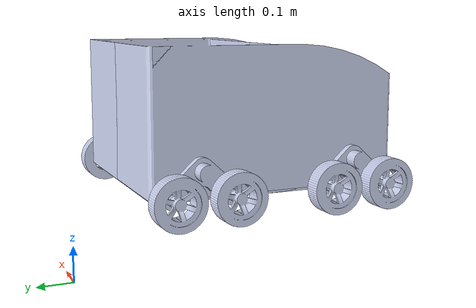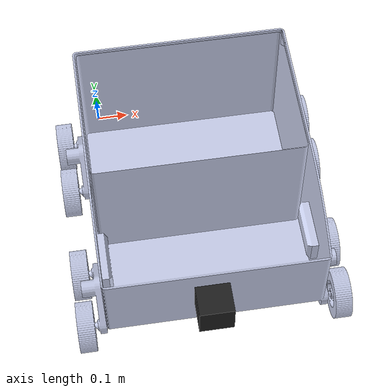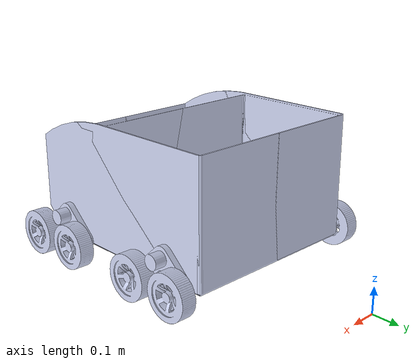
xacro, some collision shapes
<?xml version="1.0" encoding="utf-8"?>

<robot name="Seeker" xmlns:xacro="http://www.ros.org/wiki/xacro">

  <xacro:include filename="$(find mybot_description)/urdf/mybot.gazebo"/>

  <link
    name="Chasis">
    <inertial>
      <origin
        xyz="0 0 0"
        rpy="0 0 0" />
      <mass
        value="12.4859505071521" />
      <inertia
        ixx="1.01360446250522"
        ixy="0.001164833306525"
        ixz="0.00225910280162558"
        iyy="1.49025272199556"
        iyz="0.0324768843585427"
        izz="0.882066585115218" />
    </inertial>
    <visual>
      <origin
        xyz="0 0 0"
        rpy="0 0 0" />
      <geometry>
        <mesh
          filename="package://mybot_description/meshes/Chasis.STL" />
      </geometry>
      <material
        name="">
        <color
          rgba="0.792156862745098 0.819607843137255 0.933333333333333 1" />
      </material>
    </visual>
    <collision>
      <origin
        xyz="0 0 0"
        rpy="0 0 0" />
      <geometry>
        <mesh
          filename="package://mybot_description/meshes/Chasis.STL" />
      </geometry>
    </collision>
  </link>
  <link
    name="R1">
    <inertial>
      <origin
        xyz="0.210440587273909 -0.0379714152675754 -0.328866275829079"
        rpy="0 0 0" />
      <mass
        value="12.9137929918589" />
      <inertia
        ixx="0.882620394058778"
        ixy="-0.0324752307095955"
        ixz="0.00225913559885805"
        iyy="1.49168595124188"
        iyz="-0.00109978408476834"
        izz="1.01543088126766" />
    </inertial>
    <visual>
      <origin
        xyz="0 0 0"
        rpy="0 0 0" />
      <geometry>
        <mesh
          filename="package://mybot_description/meshes/R1.STL" />
      </geometry>
      <material
        name="">
        <color
          rgba="0.792156862745098 0.819607843137255 0.933333333333333 1" />
      </material>
    </visual>
    <collision>
      <origin
        xyz="0 0 0"
        rpy="0 0 0" />
      <geometry>
        <mesh
          filename="package://mybot_description/meshes/R1.STL" />
      </geometry>
    </collision>
  </link>
  <joint
    name="R1"
    type="fixed">
    <origin
      xyz="0.60388 -0.33906 0.29147"
      rpy="-1.5708 0 -1.5708" />
    <parent
      link="Chasis" />
    <child
      link="R1" />
    <axis
      xyz="0 0 1" />
    <!--limit lower="-1.0472" upper="1.0472" effort="200" velocity="200"/-->
  </joint>
  <link
    name="W1">
    <inertial>
      <origin
        xyz="0.0246508928973738 8.20179979488245E-10 -1.92021937239772E-09"
        rpy="0 0 0" />
      <mass
        value="0.624978153136474" />
      <inertia
        ixx="0.00218210262036127"
        ixy="8.24494283706725E-12"
        ixz="-5.60443093753476E-11"
        iyy="0.00122313873195121"
        iyz="-1.92943006813466E-11"
        izz="0.00122313883133883" />
    </inertial>
    <visual>
      <origin
        xyz="0 0 0"
        rpy="0 0 0" />
      <geometry>
        <mesh
          filename="package://mybot_description/meshes/W1.STL" />
      </geometry>
      <material
        name="">
        <color
          rgba="0.792156862745098 0.819607843137255 0.933333333333333 1" />
      </material>
    </visual>
    <collision>
      <origin
        xyz="0 0 0"
        rpy="0 0 0" />
      <geometry>
        <mesh
          filename="package://mybot_description/meshes/W1.STL" />
      </geometry>
      <contact_coefficients mu="0.7" kp="0.1" kd="0.1"/>
      <surface>
        <friction>
          <ode>
            <mu>1000.0</mu>
            <mu2>1000.0</mu2>
          </ode>
        </friction>
        <contact>
          <ode>
            <min_depth>0.01</min_depth>
          </ode>
        </contact>
      </surface>
    </collision>
  </link>
  <joint
    name="W1"
    type="continuous">
    <origin
      xyz="-0.088281 0.079057 0.015"
      rpy="0.10412 -1.5708 0" />
    <parent
      link="R1" />
    <child
      link="W1" />
    <axis
      xyz="1 0 0" />
  </joint>
  <link
    name="W2">
    <inertial>
      <origin
        xyz="0.0246508928973738 8.20175566351722E-10 -1.92022331368946E-09"
        rpy="0 0 0" />
      <mass
        value="0.624978153136473" />
      <inertia
        ixx="0.00218210262036126"
        ixy="8.24494287209551E-12"
        ixz="-5.60443095098206E-11"
        iyy="0.0012231387319512"
        iyz="-1.92943015622608E-11"
        izz="0.00122313883133883" />
    </inertial>
    <visual>
      <origin
        xyz="0 0 0"
        rpy="0 0 0" />
      <geometry>
        <mesh
          filename="package://mybot_description/meshes/W2.STL" />
      </geometry>
      <material
        name="">
        <color
          rgba="0.792156862745098 0.819607843137255 0.933333333333333 1" />
      </material>
    </visual>
    <collision>
      <origin
        xyz="0 0 0"
        rpy="0 0 0" />
      <geometry>
        <mesh
          filename="package://mybot_description/meshes/W2.STL" />
      </geometry>
      <contact_coefficients mu="0.7" kp="0.1" kd="0.1"/>
      <surface>
        <friction>
          <ode>
            <mu>1000.0</mu>
            <mu2>1000.0</mu2>
          </ode>
        </friction>
        <contact>
          <ode>
            <min_depth>0.01</min_depth>
          </ode>
        </contact>
      </surface>
    </collision>
  </link>
  <joint
    name="W2"
    type="continuous">
    <origin
      xyz="0.085535 0.079057 0.015"
      rpy="0.7362 -1.5708 0" />
    <parent
      link="R1" />
    <child
      link="W2" />
    <axis
      xyz="1 0 0" />
  </joint>
  <link
    name="R2">
    <inertial>
      <origin
        xyz="-0.247254399515214 -0.036399937024154 -0.328866275833932"
        rpy="0 0 0" />
      <mass
        value="12.9137929918589" />
      <inertia
        ixx="0.882620394058778"
        ixy="-0.0324752307095952"
        ixz="0.00225913559885811"
        iyy="1.49168595124188"
        iyz="-0.00109978408476829"
        izz="1.01543088126766" />
    </inertial>
    <visual>
      <origin
        xyz="0 0 0"
        rpy="0 0 0" />
      <geometry>
        <mesh
          filename="package://mybot_description/meshes/R2.STL" />
      </geometry>
      <material
        name="">
        <color
          rgba="0.792156862745098 0.819607843137255 0.933333333333333 1" />
      </material>
    </visual>
    <collision>
      <origin
        xyz="0 0 0"
        rpy="0 0 0" />
      <geometry>
        <mesh
          filename="package://mybot_description/meshes/R2.STL" />
      </geometry>
    </collision>
  </link>
  <joint
    name="R2"
    type="fixed">
    <origin
      xyz="0.60388 -0.81244 0.29309"
      rpy="-1.5708 0 -1.5708" />
    <parent
      link="Chasis" />
    <child
      link="R2" />
    <axis
      xyz="0 0 1" />
    <!--limit lower="-1.0472" upper="1.0472" effort="200" velocity="200"/-->
  </joint>
  <link
    name="W3">
    <inertial>
      <origin
        xyz="-9.06349550966468E-10 -1.88108628673689E-09 -0.0246508928974157"
        rpy="0 0 0" />
      <mass
        value="0.624978153136475" />
      <inertia
        ixx="0.00122313873390233"
        ixy="2.37145574445013E-11"
        ixz="1.07763381668903E-11"
        iyy="0.00122313882938771"
        iyz="5.56130763470275E-11"
        izz="0.00218210262036127" />
    </inertial>
    <visual>
      <origin
        xyz="0 0 0"
        rpy="0 0 0" />
      <geometry>
        <mesh
          filename="package://mybot_description/meshes/W3.STL" />
      </geometry>
      <material
        name="">
        <color
          rgba="0.792156862745098 0.819607843137255 0.933333333333333 1" />
      </material>
    </visual>
    <collision>
      <origin
        xyz="0 0 0"
        rpy="0 0 0" />
      <geometry>
        <mesh
          filename="package://mybot_description/meshes/W3.STL" />
      </geometry>
      <contact_coefficients mu="0.7" kp="0.1" kd="0.1"/>
      <surface>
        <friction>
          <ode>
            <mu>1000.0</mu>
            <mu2>1000.0</mu2>
          </ode>
        </friction>
        <contact>
          <ode>
            <min_depth>0.01</min_depth>
          </ode>
        </contact>
      </surface>
    </collision>
  </link>
  <joint
    name="W3"
    type="continuous">
    <origin
      xyz="-0.088281 0.079057 0.015"
      rpy="3.1416 0 2.565" />
    <parent
      link="R2" />
    <child
      link="W3" />
    <axis
      xyz="0 0 -1" />
  </joint>
  <link
    name="W4">
    <inertial>
      <origin
        xyz="-9.06371866449263E-10 -1.88107310283847E-09 -0.0246508928974158"
        rpy="0 0 0" />
      <mass
        value="0.624978153136476" />
      <inertia
        ixx="0.00122313873390233"
        ixy="2.37145570108205E-11"
        ixz="1.07763382247459E-11"
        iyy="0.00122313882938771"
        iyz="5.56130761899959E-11"
        izz="0.00218210262036127" />
    </inertial>
    <visual>
      <origin
        xyz="0 0 0"
        rpy="0 0 0" />
      <geometry>
        <mesh
          filename="package://mybot_description/meshes/W4.STL" />
      </geometry>
      <material
        name="">
        <color
          rgba="0.792156862745098 0.819607843137255 0.933333333333333 1" />
      </material>
    </visual>
    <collision>
      <origin
        xyz="0 0 0"
        rpy="0 0 0" />
      <geometry>
        <mesh
          filename="package://mybot_description/meshes/W4.STL" />
      </geometry>
      <contact_coefficients mu="0.7" kp="0.1" kd="0.1"/>
      <surface>
        <friction>
          <ode>
            <mu>1000.0</mu>
            <mu2>1000.0</mu2>
          </ode>
        </friction>
        <contact>
          <ode>
            <min_depth>0.01</min_depth>
          </ode>
        </contact>
      </surface>
    </collision>
  </link>
  <joint
    name="W4"
    type="continuous">
    <origin
      xyz="0.085535 0.079057 0.015"
      rpy="3.1416 0 -0.49821" />
    <parent
      link="R2" />
    <child
      link="W4" />
    <axis
      xyz="0 0 -1" />
  </joint>
  <link
    name="R3">
    <inertial>
      <origin
        xyz="-0.000112134603345082 -0.0396843310970351 0.00394210672254929"
        rpy="0 0 0" />
      <mass
        value="0.427842484706731" />
      <inertia
        ixx="0.0005538089435605"
        ixy="-1.6536489469952E-06"
        ixz="-3.27972324773465E-08"
        iyy="0.00143322924632072"
        iyz="6.50492217566076E-05"
        izz="0.00182641876243821" />
    </inertial>
    <visual>
      <origin
        xyz="0 0 0"
        rpy="0 0 0" />
      <geometry>
        <mesh
          filename="package://mybot_description/meshes/R3.STL" />
      </geometry>
      <material
        name="">
        <color
          rgba="0.792156862745098 0.819607843137255 0.933333333333333 1" />
      </material>
    </visual>
    <collision>
      <origin
        xyz="0 0 0"
        rpy="0 0 0" />
      <geometry>
        <mesh
          filename="package://mybot_description/meshes/R3.STL" />
      </geometry>
    </collision>
  </link>
  <joint
    name="R3"
    type="fixed">
    <origin
      xyz="-0.076119 -0.33919 0.29409"
      rpy="1.5708 0 1.5708" />
    <parent
      link="Chasis" />
    <child
      link="R3" />
    <axis
      xyz="0 0 1" />
    <!--limit lower="-1.0472" upper="1.0472" effort="200" velocity="200"/-->
  </joint>
  <link
    name="W5">
    <inertial>
      <origin
        xyz="0.0246508928973624 8.20185974692578E-10 -1.92021992750924E-09"
        rpy="0 0 0" />
      <mass
        value="0.624978153136473" />
      <inertia
        ixx="0.00218210262036126"
        ixy="8.24494263685625E-12"
        ixz="-5.60443094778343E-11"
        iyy="0.0012231387319512"
        iyz="-1.92943015080507E-11"
        izz="0.00122313883133883" />
    </inertial>
    <visual>
      <origin
        xyz="0 0 0"
        rpy="0 0 0" />
      <geometry>
        <mesh
          filename="package://mybot_description/meshes/W5.STL" />
      </geometry>
      <material
        name="">
        <color
          rgba="0.792156862745098 0.819607843137255 0.933333333333333 1" />
      </material>
    </visual>
    <collision>
      <origin
        xyz="0 0 0"
        rpy="0 0 0" />
      <geometry>
        <mesh
          filename="package://mybot_description/meshes/W5.STL" />
      </geometry>
      <contact_coefficients mu="0.7" kp="0.1" kd="0.1"/>
      <surface>
        <friction>
          <ode>
            <mu>1000.0</mu>
            <mu2>1000.0</mu2>
          </ode>
        </friction>
        <contact>
          <ode>
            <min_depth>0.01</min_depth>
          </ode>
        </contact>
      </surface>
    </collision>
  </link>
  <joint
    name="W5"
    type="continuous">
    <origin
      xyz="0.085535 -0.079057 -0.015"
      rpy="1.217 1.5708 0" />
    <parent
      link="R3" />
    <child
      link="W5" />
    <axis
      xyz="-1 0 0" />
  </joint>
  <link
    name="W6">
    <inertial>
      <origin
        xyz="0.0246508928973643 8.20185308558763E-10 -1.92022059364305E-09"
        rpy="0 0 0" />
      <mass
        value="0.624978153136473" />
      <inertia
        ixx="0.00218210262036126"
        ixy="8.24494261598964E-12"
        ixz="-5.60443096569971E-11"
        iyy="0.0012231387319512"
        iyz="-1.92943012641052E-11"
        izz="0.00122313883133883" />
    </inertial>
    <visual>
      <origin
        xyz="0 0 0"
        rpy="0 0 0" />
      <geometry>
        <mesh
          filename="package://mybot_description/meshes/W6.STL" />
      </geometry>
      <material
        name="">
        <color
          rgba="0.792156862745098 0.819607843137255 0.933333333333333 1" />
      </material>
    </visual>
    <collision>
      <origin
        xyz="0 0 0"
        rpy="0 0 0" />
      <geometry>
        <mesh
          filename="package://mybot_description/meshes/W6.STL" />
      </geometry>
      <contact_coefficients mu="0.7" kp="0.1" kd="0.1"/>
      <surface>
        <friction>
          <ode>
            <mu>1000.0</mu>
            <mu2>1000.0</mu2>
          </ode>
        </friction>
        <contact>
          <ode>
            <min_depth>0.01</min_depth>
          </ode>
        </contact>
      </surface>
    </collision>
  </link>
  <joint
    name="W6"
    type="continuous">
    <origin
      xyz="-0.088281 -0.079057 -0.015"
      rpy="1.2855 1.5708 0" />
    <parent
      link="R3" />
    <child
      link="W6" />
    <axis
      xyz="-1 0 0" />
  </joint>
  <link
    name="R4">
    <inertial>
      <origin
        xyz="-0.000112134603345582 -0.0396843310970351 0.00394210672254927"
        rpy="0 0 0" />
      <mass
        value="0.427842484706731" />
      <inertia
        ixx="0.000553808943560501"
        ixy="-1.653648946983E-06"
        ixz="-3.27972324764283E-08"
        iyy="0.00143322924632072"
        iyz="6.50492217566075E-05"
        izz="0.00182641876243821" />
    </inertial>
    <visual>
      <origin
        xyz="0 0 0"
        rpy="0 0 0" />
      <geometry>
        <mesh
          filename="package://mybot_description/meshes/R4.STL" />
      </geometry>
      <material
        name="">
        <color
          rgba="0.792156862745098 0.819607843137255 0.933333333333333 1" />
      </material>
    </visual>
    <collision>
      <origin
        xyz="0 0 0"
        rpy="0 0 0" />
      <geometry>
        <mesh
          filename="package://mybot_description/meshes/R4.STL" />
      </geometry>
    </collision>
  </link>
  <joint
    name="R4"
    type="fixed">
    <origin
      xyz="-0.0761185171081191 -0.811047293547409 0.295629457815647"
      rpy="1.5707963267949 0 1.5707963267949" />
    <parent
      link="Chasis" />
    <child
      link="R4" />
    <axis
      xyz="0 0 1" />
    <!--limit lower="-1.0472" upper="1.0472" effort="200" velocity="200"/-->
  </joint>
  <link
    name="W7">
    <inertial>
      <origin
        xyz="-9.06364761021905E-10 -1.88107751597499E-09 -0.0246508928973643"
        rpy="0 0 0" />
      <mass
        value="0.624978153136472" />
      <inertia
        ixx="0.00122313873390232"
        ixy="2.37145575529216E-11"
        ixz="1.07763378060257E-11"
        iyy="0.00122313882938771"
        iyz="5.56130764800201E-11"
        izz="0.00218210262036126" />
    </inertial>
    <visual>
      <origin
        xyz="0 0 0"
        rpy="0 0 0" />
      <geometry>
        <mesh
          filename="package://mybot_description/meshes/W7.STL" />
      </geometry>
      <material
        name="">
        <color
          rgba="0.792156862745098 0.819607843137255 0.933333333333333 1" />
      </material>
    </visual>
    <collision>
      <origin
        xyz="0 0 0"
        rpy="0 0 0" />
      <geometry>
        <mesh
          filename="package://mybot_description/meshes/W7.STL" />
      </geometry>
      <contact_coefficients mu="0.7" kp="0.1" kd="0.1"/>
      <surface>
        <friction>
          <ode>
            <mu>1000.0</mu>
            <mu2>1000.0</mu2>
          </ode>
        </friction>
        <contact>
          <ode>
            <min_depth>0.01</min_depth>
          </ode>
        </contact>
      </surface>
    </collision>
  </link>
  <joint
    name="W7"
    type="continuous">
    <origin
      xyz="0.085535 -0.079057 -0.015"
      rpy="0 0 -2.7625" />
    <parent
      link="R4" />
    <child
      link="W7" />
    <axis
      xyz="0 0 1" />
  </joint>
  <link
    name="W8">
    <inertial>
      <origin
        xyz="-9.06364872044207E-10 -1.8810777380196E-09 -0.0246508928973643"
        rpy="0 0 0" />
      <mass
        value="0.624978153136473" />
      <inertia
        ixx="0.00122313873390232"
        ixy="2.37145578510772E-11"
        ixz="1.07763379397326E-11"
        iyy="0.00122313882938771"
        iyz="5.56130765429819E-11"
        izz="0.00218210262036126" />
    </inertial>
    <visual>
      <origin
        xyz="0 0 0"
        rpy="0 0 0" />
      <geometry>
        <mesh
          filename="package://mybot_description/meshes/W8.STL" />
      </geometry>
      <material
        name="">
        <color
          rgba="0.792156862745098 0.819607843137255 0.933333333333333 1" />
      </material>
    </visual>
    <collision>
      <origin
        xyz="0 0 0"
        rpy="0 0 0" />
      <geometry>
        <mesh
          filename="package://mybot_description/meshes/W8.STL" />
      </geometry>
      <contact_coefficients mu="0.7" kp="0.1" kd="0.1"/>
      <surface>
        <friction>
          <ode>
            <mu>1000.0</mu>
            <mu2>1000.0</mu2>
          </ode>
        </friction>
        <contact>
          <ode>
            <min_depth>0.01</min_depth>
          </ode>
        </contact>
      </surface>
    </collision>
  </link>
  <joint
    name="W8"
    type="continuous">
    <origin
      xyz="-0.088281 -0.079057 -0.015"
      rpy="0 0 -2.8209" />
    <parent
      link="R4" />
    <child
      link="W8" />
    <axis
      xyz="0 0 1" />
  </joint>

<link name="hokuyo">
    <collision>
      <origin xyz="0 0 0" rpy="0 1.5708 0"/>
      <geometry>
    <box size="0.1 0.1 0.1"/>
      </geometry>
    </collision>

    <visual>
      <origin xyz="0 0 0" rpy="0 0 0"/>
      <geometry>
        <mesh filename="package://mybot_description/meshes/hokuyo.dae"/>
      </geometry>
    </visual>

    <inertial>
      <mass value="1e-5" />
      <origin xyz="0 0 0" rpy="0 0 0"/>
      <inertia ixx="1e-6" ixy="0" ixz="0" iyy="1e-6" iyz="0" izz="1e-6" />
    </inertial>
  </link>

 <joint name="hokuyo_joint" type="fixed">
    <axis xyz="0 0 1" />
    <origin xyz="0.25 -0.985 0.42" rpy="0 0 -1.5708"/>
    <parent link="Chasis"/>
    <child link="hokuyo"/>
  </joint>

</robot>
